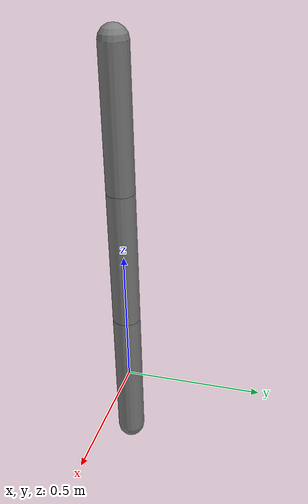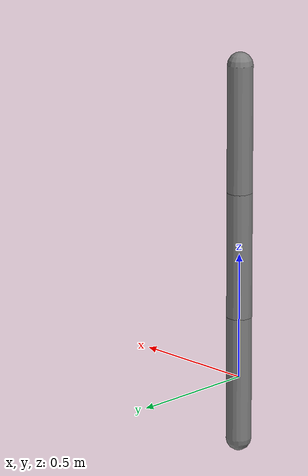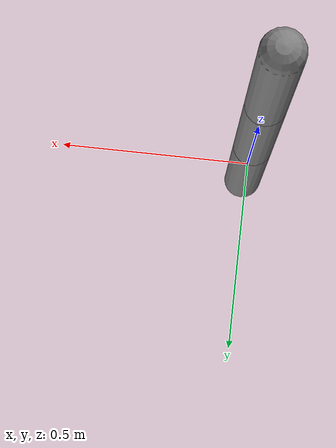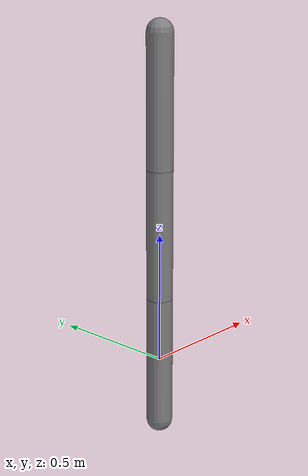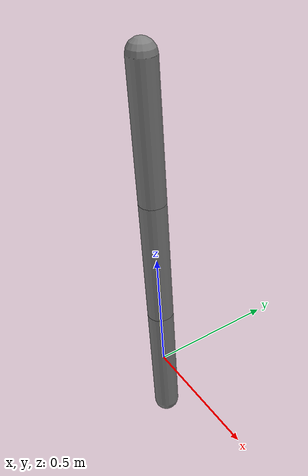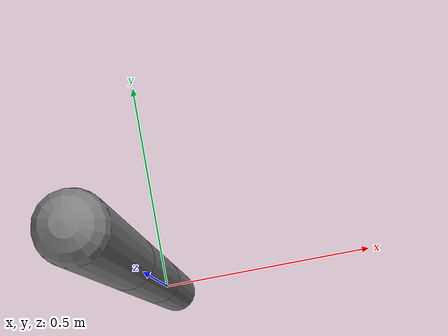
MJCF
<mujoco>
      <option gravity="0 0 -9.81"/>
      <worldbody>
        <body name="link1" pos="0 0 1">
          <joint name="j1" type="hinge" axis="0 1 0"/>
          <geom type="capsule" size="0.05 0.25" mass="1.0"/>
          <site name="imu" pos="0 0 0"/>
          <body name="link2" pos="0 0 -0.5">
            <joint name="j2" type="hinge" axis="0 1 0"/>
            <geom type="capsule" size="0.05 0.25" mass="1.0"/>
            <body name="link3" pos="0 0 -0.5">
              <joint name="j3" type="hinge" axis="0 1 0"/>
              <geom type="capsule" size="0.05 0.25" mass="1.0"/>
            </body>
          </body>
        </body>
      </worldbody>
      <sensor>
        <accelerometer site="imu"/>
      </sensor>
    </mujoco>
